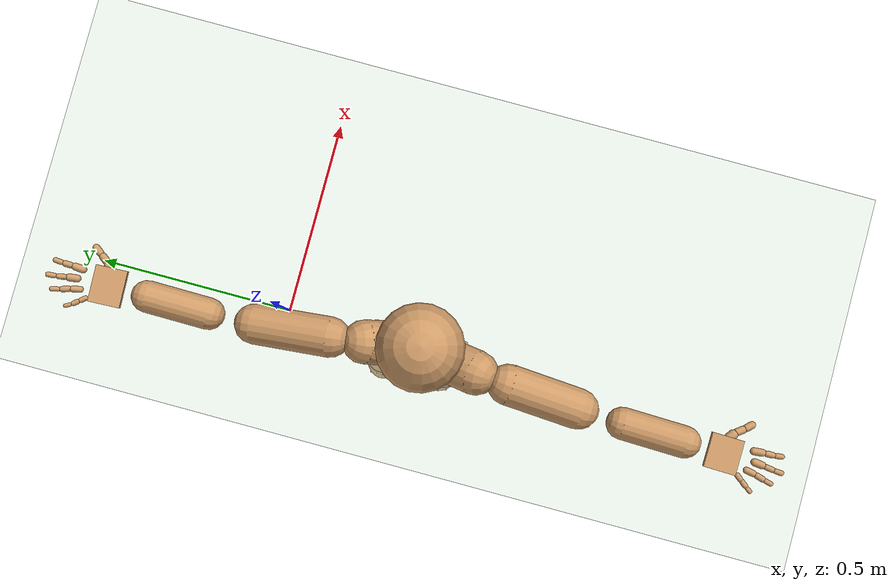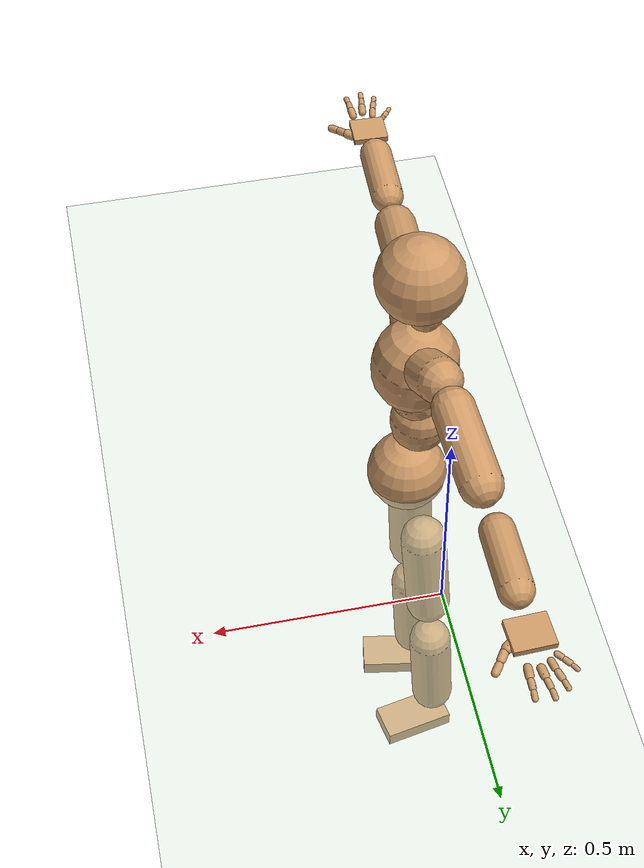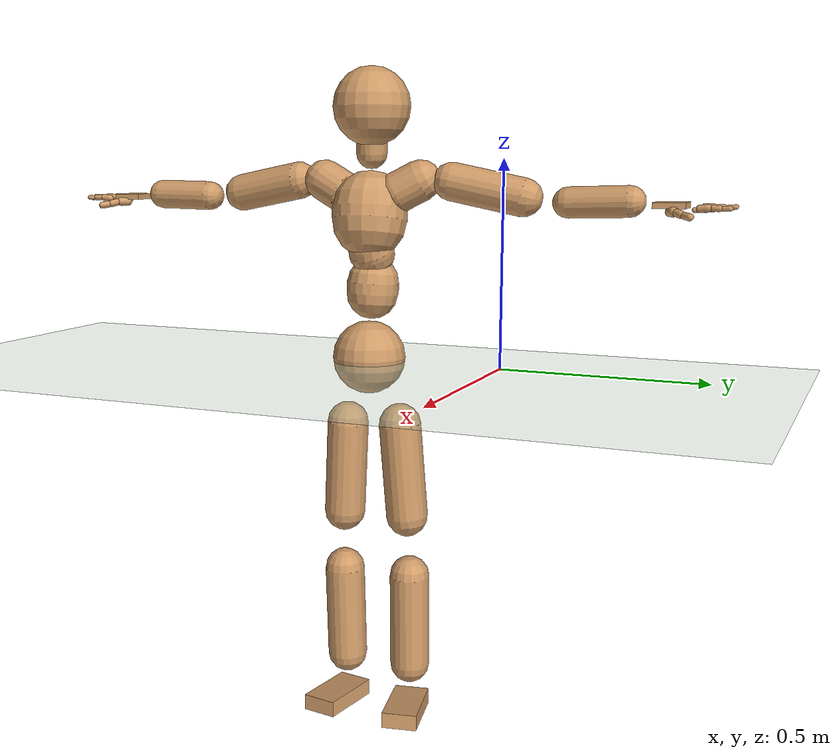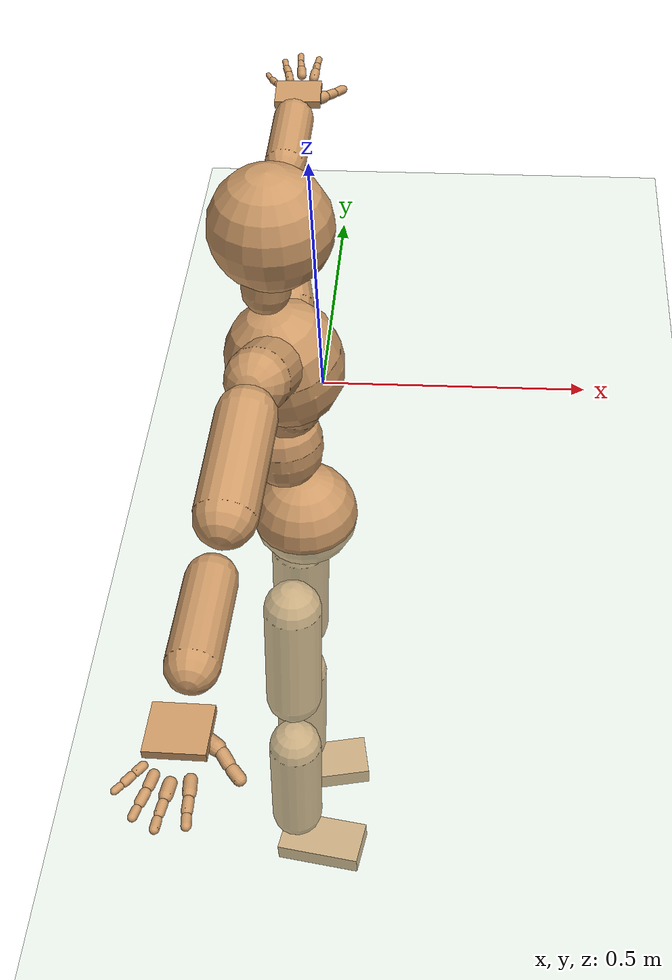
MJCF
<mujoco model="humanoid">
  <compiler coordinate="local" angle="radian"/>
  <default>
    <joint damping="0.0" armature="0.01" stiffness="0.0" limited="true"/>
    <geom conaffinity="1" condim="3" contype="7" margin="0.001" rgba="0.8 0.6 .4 1"/>
  </default>
  <asset>
    <texture type="skybox" builtin="gradient" rgb1=".4 .5 .6" rgb2="0 0 0" width="100" height="100"/>
    <texture builtin="flat" height="1278" mark="cross" markrgb="1 1 1" name="texgeom" random="0.01" rgb1="0.8 0.6 0.4" rgb2="0.8 0.6 0.4" type="cube" width="127"/>
    <texture builtin="checker" height="100" name="texplane" rgb1="0 0 0" rgb2="0.8 0.8 0.8" type="2d" width="100"/>
    <material name="MatPlane" reflectance="0.5" shininess="1" specular="1" texrepeat="60 60" texture="texplane"/>
    <material name="geom" texture="texgeom" texuniform="true"/>
  </asset>
  <worldbody>
    <light cutoff="100" diffuse="1 1 1" dir="-0 0 -1.3" directional="true" exponent="1" pos="0 0 1.3" specular=".1 .1 .1"/>
    <geom conaffinity="1" condim="3" name="floor" pos="0 0 0" rgba="0.8 0.9 0.8 1" size="100 100 .2" type="plane" material="MatPlane"/>
    <body name="Pelvis" pos="0.0003 -0.3472 0.0081">
      <freejoint name="Pelvis"/>
      <geom type="sphere" contype="1" conaffinity="1" density="500" size="0.0917" pos="0.0000 0.0000 0.0000" name="Pelvis"/>
      <body name="L_Hip" pos="-0.0222 0.0682 -0.0917">
        <joint name="L_Hip_x" type="hinge" pos="0 0 0" axis="1 0 0" stiffness="800" damping="80" armature="0.02" range="-180.0000 180.0000"/>
        <joint name="L_Hip_y" type="hinge" pos="0 0 0" axis="0 1 0" stiffness="800" damping="80" armature="0.02" range="-180.0000 180.0000"/>
        <joint name="L_Hip_z" type="hinge" pos="0 0 0" axis="0 0 1" stiffness="800" damping="80" armature="0.02" range="-180.0000 180.0000"/>
        <geom type="capsule" contype="1" conaffinity="1" density="500" fromto="-0.0051 0.0048 -0.0818 -0.0203 0.0190 -0.3273" size="0.0535" name="L_Hip"/>
        <body name="L_Knee" pos="-0.0253 0.0238 -0.4091">
          <joint name="L_Knee_x" type="hinge" pos="0 0 0" axis="1 0 0" stiffness="800" damping="80" armature="0.02" range="-180.0000 180.0000"/>
          <joint name="L_Knee_y" type="hinge" pos="0 0 0" axis="0 1 0" stiffness="800" damping="80" armature="0.02" range="-180.0000 180.0000"/>
          <joint name="L_Knee_z" type="hinge" pos="0 0 0" axis="0 0 1" stiffness="800" damping="80" armature="0.02" range="-180.0000 180.0000"/>
          <geom type="capsule" contype="1" conaffinity="1" density="500" fromto="-0.0047 -0.0012 -0.0837 -0.0187 -0.0049 -0.3350" size="0.0518" name="L_Knee"/>
          <body name="L_Ankle" pos="-0.0233 -0.0062 -0.4187">
            <joint name="L_Ankle_x" type="hinge" pos="0 0 0" axis="1 0 0" stiffness="800" damping="80" armature="0.02" range="-180.0000 180.0000"/>
            <joint name="L_Ankle_y" type="hinge" pos="0 0 0" axis="0 1 0" stiffness="800" damping="80" armature="0.02" range="-180.0000 180.0000"/>
            <joint name="L_Ankle_z" type="hinge" pos="0 0 0" axis="0 0 1" stiffness="800" damping="80" armature="0.02" range="-180.0000 180.0000"/>
            <geom type="box" contype="1" conaffinity="1" density="500" pos="0.0557 0.0107 -0.0232" size="0.0866 0.0455 0.0205" quat="0.9955 0.0000 0.0000 0.0948" name="L_Ankle"/>
            <body name="L_Toe" pos="0.1114 0.0214 -0.0465">
              <joint name="L_Toe_x" type="hinge" pos="0 0 0" axis="1 0 0" stiffness="500" damping="50" armature="0.02" range="-180.0000 180.0000"/>
              <joint name="L_Toe_y" type="hinge" pos="0 0 0" axis="0 1 0" stiffness="500" damping="50" armature="0.02" range="-180.0000 180.0000"/>
              <joint name="L_Toe_z" type="hinge" pos="0 0 0" axis="0 0 1" stiffness="500" damping="50" armature="0.02" range="-180.0000 180.0000"/>
              <geom type="box" contype="1" conaffinity="1" density="500" pos="0.0000 0.0000 0.0232" size="0.0009 0.0023 0.001" quat="0.9948 0.0000 0.0000 0.1016" name="L_Toe"/>
            </body>
          </body>
        </body>
      </body>
      <body name="R_Hip" pos="-0.0236 -0.0676 -0.0987">
        <joint name="R_Hip_x" type="hinge" pos="0 0 0" axis="1 0 0" stiffness="800" damping="80" armature="0.02" range="-180.0000 180.0000"/>
        <joint name="R_Hip_y" type="hinge" pos="0 0 0" axis="0 1 0" stiffness="800" damping="80" armature="0.02" range="-180.0000 180.0000"/>
        <joint name="R_Hip_z" type="hinge" pos="0 0 0" axis="0 0 1" stiffness="800" damping="80" armature="0.02" range="-180.0000 180.0000"/>
        <geom type="capsule" contype="1" conaffinity="1" density="500" fromto="-0.0039 -0.0054 -0.0809 -0.0157 -0.0215 -0.3236" size="0.0532" name="R_Hip"/>
        <body name="R_Knee" pos="-0.0196 -0.0269 -0.4045">
          <joint name="R_Knee_x" type="hinge" pos="0 0 0" axis="1 0 0" stiffness="800" damping="80" armature="0.02" range="-180.0000 180.0000"/>
          <joint name="R_Knee_y" type="hinge" pos="0 0 0" axis="0 1 0" stiffness="800" damping="80" armature="0.02" range="-180.0000 180.0000"/>
          <joint name="R_Knee_z" type="hinge" pos="0 0 0" axis="0 0 1" stiffness="800" damping="80" armature="0.02" range="-180.0000 180.0000"/>
          <geom type="capsule" contype="1" conaffinity="1" density="500" fromto="-0.0038 0.0003 -0.0820 -0.0153 0.0014 -0.3280" size="0.0518" name="R_Knee"/>
          <body name="R_Ankle" pos="-0.0192 0.0017 -0.41">
            <joint name="R_Ankle_x" type="hinge" pos="0 0 0" axis="1 0 0" stiffness="800" damping="80" armature="0.02" range="-180.0000 180.0000"/>
            <joint name="R_Ankle_y" type="hinge" pos="0 0 0" axis="0 1 0" stiffness="800" damping="80" armature="0.02" range="-180.0000 180.0000"/>
            <joint name="R_Ankle_z" type="hinge" pos="0 0 0" axis="0 0 1" stiffness="800" damping="80" armature="0.02" range="-180.0000 180.0000"/>
            <geom type="box" contype="1" conaffinity="1" density="500" pos="0.0525 -0.0087 -0.0251" size="0.0866 0.0455 0.0205" quat="0.9966 0.0000 0.0000 -0.0819" name="R_Ankle"/>
            <body name="R_Toe" pos="0.105 -0.0174 -0.0503">
              <joint name="R_Toe_x" type="hinge" pos="0 0 0" axis="1 0 0" stiffness="500" damping="50" armature="0.02" range="-180.0000 180.0000"/>
              <joint name="R_Toe_y" type="hinge" pos="0 0 0" axis="0 1 0" stiffness="500" damping="50" armature="0.02" range="-180.0000 180.0000"/>
              <joint name="R_Toe_z" type="hinge" pos="0 0 0" axis="0 0 1" stiffness="500" damping="50" armature="0.02" range="-180.0000 180.0000"/>
              <geom type="box" contype="1" conaffinity="1" density="500" pos="0.0000 0.0000 0.0252" size="0.0009 0.0023 0.001" quat="0.9975 0.0000 0.0000 -0.0713" name="R_Toe"/>
            </body>
          </body>
        </body>
      </body>
      <body name="Torso" pos="-0.023 -0.005 0.1059">
        <joint name="Torso_x" type="hinge" pos="0 0 0" axis="1 0 0" stiffness="1000" damping="100" armature="0.02" range="-180.0000 180.0000"/>
        <joint name="Torso_y" type="hinge" pos="0 0 0" axis="0 1 0" stiffness="1000" damping="100" armature="0.02" range="-180.0000 180.0000"/>
        <joint name="Torso_z" type="hinge" pos="0 0 0" axis="0 0 1" stiffness="1000" damping="100" armature="0.02" range="-180.0000 180.0000"/>
        <geom type="capsule" contype="1" conaffinity="1" density="500" fromto="-0.0026 0.0050 0.0800 -0.0017 0.0033 0.0534" size="0.0653" name="Torso"/>
        <body name="Spine" pos="-0.0043 0.0084 0.1334">
          <joint name="Spine_x" type="hinge" pos="0 0 0" axis="1 0 0" stiffness="1000" damping="100" armature="0.02" range="-180.0000 180.0000"/>
          <joint name="Spine_y" type="hinge" pos="0 0 0" axis="0 1 0" stiffness="1000" damping="100" armature="0.02" range="-180.0000 180.0000"/>
          <joint name="Spine_z" type="hinge" pos="0 0 0" axis="0 0 1" stiffness="1000" damping="100" armature="0.02" range="-180.0000 180.0000"/>
          <geom type="capsule" contype="1" conaffinity="1" density="500" fromto="0.0165 -0.0025 0.0287 0.0110 -0.0017 0.0192" size="0.0571" name="Spine"/>
          <body name="Chest" pos="0.0275 -0.0042 0.0479">
            <joint name="Chest_x" type="hinge" pos="0 0 0" axis="1 0 0" stiffness="1000" damping="100" armature="0.02" range="-180.0000 180.0000"/>
            <joint name="Chest_y" type="hinge" pos="0 0 0" axis="0 1 0" stiffness="1000" damping="100" armature="0.02" range="-180.0000 180.0000"/>
            <joint name="Chest_z" type="hinge" pos="0 0 0" axis="0 0 1" stiffness="1000" damping="100" armature="0.02" range="-180.0000 180.0000"/>
            <geom type="capsule" contype="1" conaffinity="1" density="500" fromto="-0.0137 -0.0016 0.0821 -0.0091 -0.0011 0.0548" size="0.0945" name="Chest"/>
            <body name="Neck" pos="-0.0337 -0.0057 0.1891">
              <joint name="Neck_x" type="hinge" pos="0 0 0" axis="1 0 0" stiffness="500" damping="50" armature="0.02" range="-180.0000 180.0000"/>
              <joint name="Neck_y" type="hinge" pos="0 0 0" axis="0 1 0" stiffness="500" damping="50" armature="0.02" range="-180.0000 180.0000"/>
              <joint name="Neck_z" type="hinge" pos="0 0 0" axis="0 0 1" stiffness="500" damping="50" armature="0.02" range="-180.0000 180.0000"/>
              <geom type="capsule" contype="1" conaffinity="1" density="500" fromto="0.0038 0.0018 0.0280 0.0153 0.0070 0.1120" size="0.0386" name="Neck"/>
              <body name="Head" pos="0.0191 0.0088 0.14">
                <joint name="Head_x" type="hinge" pos="0 0 0" axis="1 0 0" stiffness="500" damping="50" armature="0.02" range="-180.0000 180.0000"/>
                <joint name="Head_y" type="hinge" pos="0 0 0" axis="0 1 0" stiffness="500" damping="50" armature="0.02" range="-180.0000 180.0000"/>
                <joint name="Head_z" type="hinge" pos="0 0 0" axis="0 0 1" stiffness="500" damping="50" armature="0.02" range="-180.0000 180.0000"/>
                <geom type="sphere" contype="1" conaffinity="1" density="500" size="0.0961" pos="0.0000 0.0000 0.0000" name="Head"/>
              </body>
            </body>
            <body name="L_Thorax" pos="-0.0144 0.052 0.1127">
              <joint name="L_Thorax_x" type="hinge" pos="0 0 0" axis="1 0 0" stiffness="500" damping="50" armature="0.02" range="-180.0000 180.0000"/>
              <joint name="L_Thorax_y" type="hinge" pos="0 0 0" axis="0 1 0" stiffness="500" damping="50" armature="0.02" range="-180.0000 180.0000"/>
              <joint name="L_Thorax_z" type="hinge" pos="0 0 0" axis="0 0 1" stiffness="500" damping="50" armature="0.02" range="-180.0000 180.0000"/>
              <geom type="capsule" contype="1" conaffinity="1" density="500" fromto="-0.0043 0.0184 0.0098 -0.0172 0.0735 0.0391" size="0.0506" name="L_Thorax"/>
              <body name="L_Shoulder" pos="-0.0216 0.0918 0.0489">
                <joint name="L_Shoulder_x" type="hinge" pos="0 0 0" axis="1 0 0" stiffness="500" damping="50" armature="0.02" range="-180.0000 180.0000"/>
                <joint name="L_Shoulder_y" type="hinge" pos="0 0 0" axis="0 1 0" stiffness="500" damping="50" armature="0.02" range="-180.0000 180.0000"/>
                <joint name="L_Shoulder_z" type="hinge" pos="0 0 0" axis="0 0 1" stiffness="500" damping="50" armature="0.02" range="-180.0000 180.0000"/>
                <geom type="capsule" contype="1" conaffinity="1" density="500" fromto="-0.0053 0.0590 -0.0120 -0.0212 0.2360 -0.0480" size="0.0465" name="L_Shoulder"/>
                <body name="L_Elbow" pos="-0.0265 0.295 -0.0601">
                  <joint name="L_Elbow_x" type="hinge" pos="0 0 0" axis="1 0 0" stiffness="500" damping="50" armature="0.02" range="-720.0000 720.0000"/>
                  <joint name="L_Elbow_y" type="hinge" pos="0 0 0" axis="0 1 0" stiffness="500" damping="50" armature="0.02" range="-720.0000 720.0000"/>
                  <joint name="L_Elbow_z" type="hinge" pos="0 0 0" axis="0 0 1" stiffness="500" damping="50" armature="0.02" range="-720.0000 720.0000"/>
                  <geom type="capsule" contype="1" conaffinity="1" density="500" fromto="0.0005 0.0489 0.0016 0.0018 0.1955 0.0065" size="0.037" name="L_Elbow"/>
                  <body name="L_Wrist" pos="0.0023 0.2443 0.0081">
                    <joint name="L_Wrist_x" type="hinge" pos="0 0 0" axis="1 0 0" stiffness="300" damping="30" armature="0.02" range="-180.0000 180.0000"/>
                    <joint name="L_Wrist_y" type="hinge" pos="0 0 0" axis="0 1 0" stiffness="300" damping="30" armature="0.02" range="-180.0000 180.0000"/>
                    <joint name="L_Wrist_z" type="hinge" pos="0 0 0" axis="0 0 1" stiffness="300" damping="30" armature="0.02" range="-180.0000 180.0000"/>
                    <geom type="box" contype="1" conaffinity="1" density="500" pos="-0.0019 0.0456 -0.0085" size="0.0374 0.0432 0.0069" quat="0.7218 0.0000 0.0000 -0.6921" name="L_Wrist"/>
                    <body name="L_Index1" pos="0.0202 0.1067 -0.0151">
                      <joint name="L_Index1_x" type="hinge" pos="0 0 0" axis="1 0 0" stiffness="100" damping="10" armature="0.02" range="-180.0000 180.0000"/>
                      <joint name="L_Index1_y" type="hinge" pos="0 0 0" axis="0 1 0" stiffness="100" damping="10" armature="0.02" range="-180.0000 180.0000"/>
                      <joint name="L_Index1_z" type="hinge" pos="0 0 0" axis="0 0 1" stiffness="100" damping="10" armature="0.02" range="-180.0000 180.0000"/>
                      <geom type="capsule" contype="1" conaffinity="1" density="500" fromto="0.0005 0.0063 0.0006 0.0021 0.0253 0.0022" size="0.0087" name="L_Index1"/>
                      <body name="L_Index2" pos="0.0026 0.0317 0.0028">
                        <joint name="L_Index2_x" type="hinge" pos="0 0 0" axis="1 0 0" stiffness="100" damping="10" armature="0.02" range="-180.0000 180.0000"/>
                        <joint name="L_Index2_y" type="hinge" pos="0 0 0" axis="0 1 0" stiffness="100" damping="10" armature="0.02" range="-180.0000 180.0000"/>
                        <joint name="L_Index2_z" type="hinge" pos="0 0 0" axis="0 0 1" stiffness="100" damping="10" armature="0.02" range="-180.0000 180.0000"/>
                        <geom type="capsule" contype="1" conaffinity="1" density="500" fromto="0.0001 0.0045 -0.0003 0.0003 0.0180 -0.0011" size="0.0072" name="L_Index2"/>
                        <body name="L_Index3" pos="0.0004 0.0224 -0.0014">
                          <joint name="L_Index3_x" type="hinge" pos="0 0 0" axis="1 0 0" stiffness="100" damping="10" armature="0.02" range="-180.0000 180.0000"/>
                          <joint name="L_Index3_y" type="hinge" pos="0 0 0" axis="0 1 0" stiffness="100" damping="10" armature="0.02" range="-180.0000 180.0000"/>
                          <joint name="L_Index3_z" type="hinge" pos="0 0 0" axis="0 0 1" stiffness="100" damping="10" armature="0.02" range="-180.0000 180.0000"/>
                          <geom type="capsule" contype="1" conaffinity="1" density="500" fromto="0.0005 0.0049 0.0001 0.0019 0.0196 0.0005" size="0.0061" name="L_Index3"/>
                        </body>
                      </body>
                    </body>
                    <body name="L_Middle1" pos="-0.0021 0.1138 -0.0127">
                      <joint name="L_Middle1_x" type="hinge" pos="0 0 0" axis="1 0 0" stiffness="100" damping="10" armature="0.02" range="-180.0000 180.0000"/>
                      <joint name="L_Middle1_y" type="hinge" pos="0 0 0" axis="0 1 0" stiffness="100" damping="10" armature="0.02" range="-180.0000 180.0000"/>
                      <joint name="L_Middle1_z" type="hinge" pos="0 0 0" axis="0 0 1" stiffness="100" damping="10" armature="0.02" range="-180.0000 180.0000"/>
                      <geom type="capsule" contype="1" conaffinity="1" density="500" fromto="-0.0008 0.0060 0.0003 -0.0031 0.0240 0.0011" size="0.0088" name="L_Middle1"/>
                      <body name="L_Middle2" pos="-0.0039 0.03 0.0014">
                        <joint name="L_Middle2_x" type="hinge" pos="0 0 0" axis="1 0 0" stiffness="100" damping="10" armature="0.02" range="-180.0000 180.0000"/>
                        <joint name="L_Middle2_y" type="hinge" pos="0 0 0" axis="0 1 0" stiffness="100" damping="10" armature="0.02" range="-180.0000 180.0000"/>
                        <joint name="L_Middle2_z" type="hinge" pos="0 0 0" axis="0 0 1" stiffness="100" damping="10" armature="0.02" range="-180.0000 180.0000"/>
                        <geom type="capsule" contype="1" conaffinity="1" density="500" fromto="-0.0008 0.0047 -0.0001 -0.0030 0.0187 -0.0004" size="0.0066" name="L_Middle2"/>
                        <body name="L_Middle3" pos="-0.0038 0.0234 -0.0006">
                          <joint name="L_Middle3_x" type="hinge" pos="0 0 0" axis="1 0 0" stiffness="100" damping="10" armature="0.02" range="-180.0000 180.0000"/>
                          <joint name="L_Middle3_y" type="hinge" pos="0 0 0" axis="0 1 0" stiffness="100" damping="10" armature="0.02" range="-180.0000 180.0000"/>
                          <joint name="L_Middle3_z" type="hinge" pos="0 0 0" axis="0 0 1" stiffness="100" damping="10" armature="0.02" range="-180.0000 180.0000"/>
                          <geom type="capsule" contype="1" conaffinity="1" density="500" fromto="-0.0004 0.0051 0.0003 -0.0014 0.0203 0.0012" size="0.0059" name="L_Middle3"/>
                        </body>
                      </body>
                    </body>
                    <body name="L_Pinky1" pos="-0.0394 0.0883 -0.0203">
                      <joint name="L_Pinky1_x" type="hinge" pos="0 0 0" axis="1 0 0" stiffness="100" damping="10" armature="0.02" range="-180.0000 180.0000"/>
                      <joint name="L_Pinky1_y" type="hinge" pos="0 0 0" axis="0 1 0" stiffness="100" damping="10" armature="0.02" range="-180.0000 180.0000"/>
                      <joint name="L_Pinky1_z" type="hinge" pos="0 0 0" axis="0 0 1" stiffness="100" damping="10" armature="0.02" range="-180.0000 180.0000"/>
                      <geom type="capsule" contype="1" conaffinity="1" density="500" fromto="-0.0024 0.0029 -0.0001 -0.0095 0.0117 -0.0002" size="0.0063" name="L_Pinky1"/>
                      <body name="L_Pinky2" pos="-0.0118 0.0146 -0.0003">
                        <joint name="L_Pinky2_x" type="hinge" pos="0 0 0" axis="1 0 0" stiffness="100" damping="10" armature="0.02" range="-180.0000 180.0000"/>
                        <joint name="L_Pinky2_y" type="hinge" pos="0 0 0" axis="0 1 0" stiffness="100" damping="10" armature="0.02" range="-180.0000 180.0000"/>
                        <joint name="L_Pinky2_z" type="hinge" pos="0 0 0" axis="0 0 1" stiffness="100" damping="10" armature="0.02" range="-180.0000 180.0000"/>
                        <geom type="capsule" contype="1" conaffinity="1" density="500" fromto="-0.0023 0.0030 -0.0002 -0.0092 0.0119 -0.0006" size="0.0062" name="L_Pinky2"/>
                        <body name="L_Pinky3" pos="-0.0116 0.0148 -0.0008">
                          <joint name="L_Pinky3_x" type="hinge" pos="0 0 0" axis="1 0 0" stiffness="100" damping="10" armature="0.02" range="-180.0000 180.0000"/>
                          <joint name="L_Pinky3_y" type="hinge" pos="0 0 0" axis="0 1 0" stiffness="100" damping="10" armature="0.02" range="-180.0000 180.0000"/>
                          <joint name="L_Pinky3_z" type="hinge" pos="0 0 0" axis="0 0 1" stiffness="100" damping="10" armature="0.02" range="-180.0000 180.0000"/>
                          <geom type="capsule" contype="1" conaffinity="1" density="500" fromto="-0.0019 0.0034 0.0002 -0.0076 0.0135 0.0010" size="0.0048" name="L_Pinky3"/>
                        </body>
                      </body>
                    </body>
                    <body name="L_Ring1" pos="-0.0242 0.1016 -0.0154">
                      <joint name="L_Ring1_x" type="hinge" pos="0 0 0" axis="1 0 0" stiffness="100" damping="10" armature="0.02" range="-180.0000 180.0000"/>
                      <joint name="L_Ring1_y" type="hinge" pos="0 0 0" axis="0 1 0" stiffness="100" damping="10" armature="0.02" range="-180.0000 180.0000"/>
                      <joint name="L_Ring1_z" type="hinge" pos="0 0 0" axis="0 0 1" stiffness="100" damping="10" armature="0.02" range="-180.0000 180.0000"/>
                      <geom type="capsule" contype="1" conaffinity="1" density="500" fromto="-0.0011 0.0054 0.0003 -0.0044 0.0218 0.0013" size="0.0076" name="L_Ring1"/>
                      <body name="L_Ring2" pos="-0.0055 0.0272 0.0017">
                        <joint name="L_Ring2_x" type="hinge" pos="0 0 0" axis="1 0 0" stiffness="100" damping="10" armature="0.02" range="-180.0000 180.0000"/>
                        <joint name="L_Ring2_y" type="hinge" pos="0 0 0" axis="0 1 0" stiffness="100" damping="10" armature="0.02" range="-180.0000 180.0000"/>
                        <joint name="L_Ring2_z" type="hinge" pos="0 0 0" axis="0 0 1" stiffness="100" damping="10" armature="0.02" range="-180.0000 180.0000"/>
                        <geom type="capsule" contype="1" conaffinity="1" density="500" fromto="-0.0014 0.0045 -0.0002 -0.0057 0.0179 -0.0007" size="0.0071" name="L_Ring2"/>
                        <body name="L_Ring3" pos="-0.0071 0.0224 -0.0009">
                          <joint name="L_Ring3_x" type="hinge" pos="0 0 0" axis="1 0 0" stiffness="100" damping="10" armature="0.02" range="-180.0000 180.0000"/>
                          <joint name="L_Ring3_y" type="hinge" pos="0 0 0" axis="0 1 0" stiffness="100" damping="10" armature="0.02" range="-180.0000 180.0000"/>
                          <joint name="L_Ring3_z" type="hinge" pos="0 0 0" axis="0 0 1" stiffness="100" damping="10" armature="0.02" range="-180.0000 180.0000"/>
                          <geom type="capsule" contype="1" conaffinity="1" density="500" fromto="-0.0010 0.0049 0.0002 -0.0041 0.0195 0.0009" size="0.0056" name="L_Ring3"/>
                        </body>
                      </body>
                    </body>
                    <body name="L_Thumb1" pos="0.0263 0.0459 -0.0219">
                      <joint name="L_Thumb1_x" type="hinge" pos="0 0 0" axis="1 0 0" stiffness="100" damping="10" armature="0.02" range="-180.0000 180.0000"/>
                      <joint name="L_Thumb1_y" type="hinge" pos="0 0 0" axis="0 1 0" stiffness="100" damping="10" armature="0.02" range="-180.0000 180.0000"/>
                      <joint name="L_Thumb1_z" type="hinge" pos="0 0 0" axis="0 0 1" stiffness="100" damping="10" armature="0.02" range="-180.0000 180.0000"/>
                      <geom type="capsule" contype="1" conaffinity="1" density="500" fromto="0.0047 0.0035 -0.0000 0.0188 0.0141 -0.0000" size="0.0114" name="L_Thumb1"/>
                      <body name="L_Thumb2" pos="0.0235 0.0176 0">
                        <joint name="L_Thumb2_x" type="hinge" pos="0 0 0" axis="1 0 0" stiffness="100" damping="10" armature="0.02" range="-180.0000 180.0000"/>
                        <joint name="L_Thumb2_y" type="hinge" pos="0 0 0" axis="0 1 0" stiffness="100" damping="10" armature="0.02" range="-180.0000 180.0000"/>
                        <joint name="L_Thumb2_z" type="hinge" pos="0 0 0" axis="0 0 1" stiffness="100" damping="10" armature="0.02" range="-180.0000 180.0000"/>
                        <geom type="capsule" contype="1" conaffinity="1" density="500" fromto="0.0029 0.0041 -0.0012 0.0116 0.0164 -0.0047" size="0.009" name="L_Thumb2"/>
                        <body name="L_Thumb3" pos="0.0145 0.0205 -0.0059">
                          <joint name="L_Thumb3_x" type="hinge" pos="0 0 0" axis="1 0 0" stiffness="100" damping="10" armature="0.02" range="-180.0000 180.0000"/>
                          <joint name="L_Thumb3_y" type="hinge" pos="0 0 0" axis="0 1 0" stiffness="100" damping="10" armature="0.02" range="-180.0000 180.0000"/>
                          <joint name="L_Thumb3_z" type="hinge" pos="0 0 0" axis="0 0 1" stiffness="100" damping="10" armature="0.02" range="-180.0000 180.0000"/>
                          <geom type="capsule" contype="1" conaffinity="1" density="500" fromto="0.0033 0.0045 -0.0008 0.0132 0.0180 -0.0031" size="0.0085" name="L_Thumb3"/>
                        </body>
                      </body>
                    </body>
                  </body>
                </body>
              </body>
            </body>
            <body name="R_Thorax" pos="-0.0204 -0.0543 0.1089">
              <joint name="R_Thorax_x" type="hinge" pos="0 0 0" axis="1 0 0" stiffness="500" damping="50" armature="0.02" range="-180.0000 180.0000"/>
              <joint name="R_Thorax_y" type="hinge" pos="0 0 0" axis="0 1 0" stiffness="500" damping="50" armature="0.02" range="-180.0000 180.0000"/>
              <joint name="R_Thorax_z" type="hinge" pos="0 0 0" axis="0 0 1" stiffness="500" damping="50" armature="0.02" range="-180.0000 180.0000"/>
              <geom type="capsule" contype="1" conaffinity="1" density="500" fromto="-0.0031 -0.0199 0.0102 -0.0123 -0.0795 0.0407" size="0.0516" name="R_Thorax"/>
              <body name="R_Shoulder" pos="-0.0154 -0.0994 0.0509">
                <joint name="R_Shoulder_x" type="hinge" pos="0 0 0" axis="1 0 0" stiffness="500" damping="50" armature="0.02" range="-180.0000 180.0000"/>
                <joint name="R_Shoulder_y" type="hinge" pos="0 0 0" axis="0 1 0" stiffness="500" damping="50" armature="0.02" range="-180.0000 180.0000"/>
                <joint name="R_Shoulder_z" type="hinge" pos="0 0 0" axis="0 0 1" stiffness="500" damping="50" armature="0.02" range="-180.0000 180.0000"/>
                <geom type="capsule" contype="1" conaffinity="1" density="500" fromto="-0.0039 -0.0569 -0.0109 -0.0154 -0.2277 -0.0436" size="0.0469" name="R_Shoulder"/>
                <body name="R_Elbow" pos="-0.0193 -0.2846 -0.0545">
                  <joint name="R_Elbow_x" type="hinge" pos="0 0 0" axis="1 0 0" stiffness="500" damping="50" armature="0.02" range="-720.0000 720.0000"/>
                  <joint name="R_Elbow_y" type="hinge" pos="0 0 0" axis="0 1 0" stiffness="500" damping="50" armature="0.02" range="-720.0000 720.0000"/>
                  <joint name="R_Elbow_z" type="hinge" pos="0 0 0" axis="0 0 1" stiffness="500" damping="50" armature="0.02" range="-720.0000 720.0000"/>
                  <geom type="capsule" contype="1" conaffinity="1" density="500" fromto="-0.0013 -0.0491 0.0007 -0.0052 -0.1963 0.0030" size="0.0372" name="R_Elbow"/>
                  <body name="R_Wrist" pos="-0.0065 -0.2454 0.0037">
                    <joint name="R_Wrist_x" type="hinge" pos="0 0 0" axis="1 0 0" stiffness="300" damping="30" armature="0.02" range="-180.0000 180.0000"/>
                    <joint name="R_Wrist_y" type="hinge" pos="0 0 0" axis="0 1 0" stiffness="300" damping="30" armature="0.02" range="-180.0000 180.0000"/>
                    <joint name="R_Wrist_z" type="hinge" pos="0 0 0" axis="0 0 1" stiffness="300" damping="30" armature="0.02" range="-180.0000 180.0000"/>
                    <geom type="box" contype="1" conaffinity="1" density="500" pos="-0.0012 -0.0449 -0.0082" size="0.0374 0.0404 0.007" quat="0.7165 0.0000 0.0000 0.6976" name="R_Wrist"/>
                    <body name="R_Index1" pos="0.0217 -0.1053 -0.0144">
                      <joint name="R_Index1_x" type="hinge" pos="0 0 0" axis="1 0 0" stiffness="100" damping="10" armature="0.02" range="-180.0000 180.0000"/>
                      <joint name="R_Index1_y" type="hinge" pos="0 0 0" axis="0 1 0" stiffness="100" damping="10" armature="0.02" range="-180.0000 180.0000"/>
                      <joint name="R_Index1_z" type="hinge" pos="0 0 0" axis="0 0 1" stiffness="100" damping="10" armature="0.02" range="-180.0000 180.0000"/>
                      <geom type="capsule" contype="1" conaffinity="1" density="500" fromto="0.0005 -0.0063 0.0006 0.0021 -0.0253 0.0022" size="0.0087" name="R_Index1"/>
                      <body name="R_Index2" pos="0.0026 -0.0317 0.0028">
                        <joint name="R_Index2_x" type="hinge" pos="0 0 0" axis="1 0 0" stiffness="100" damping="10" armature="0.02" range="-180.0000 180.0000"/>
                        <joint name="R_Index2_y" type="hinge" pos="0 0 0" axis="0 1 0" stiffness="100" damping="10" armature="0.02" range="-180.0000 180.0000"/>
                        <joint name="R_Index2_z" type="hinge" pos="0 0 0" axis="0 0 1" stiffness="100" damping="10" armature="0.02" range="-180.0000 180.0000"/>
                        <geom type="capsule" contype="1" conaffinity="1" density="500" fromto="0.0001 -0.0045 -0.0003 0.0003 -0.0180 -0.0011" size="0.0072" name="R_Index2"/>
                        <body name="R_Index3" pos="0.0004 -0.0224 -0.0014">
                          <joint name="R_Index3_x" type="hinge" pos="0 0 0" axis="1 0 0" stiffness="100" damping="10" armature="0.02" range="-180.0000 180.0000"/>
                          <joint name="R_Index3_y" type="hinge" pos="0 0 0" axis="0 1 0" stiffness="100" damping="10" armature="0.02" range="-180.0000 180.0000"/>
                          <joint name="R_Index3_z" type="hinge" pos="0 0 0" axis="0 0 1" stiffness="100" damping="10" armature="0.02" range="-180.0000 180.0000"/>
                          <geom type="capsule" contype="1" conaffinity="1" density="500" fromto="0.0005 -0.0041 0.0001 0.0019 -0.0164 0.0005" size="0.0064" name="R_Index3"/>
                        </body>
                      </body>
                    </body>
                    <body name="R_Middle1" pos="-0.0007 -0.1124 -0.0121">
                      <joint name="R_Middle1_x" type="hinge" pos="0 0 0" axis="1 0 0" stiffness="100" damping="10" armature="0.02" range="-180.0000 180.0000"/>
                      <joint name="R_Middle1_y" type="hinge" pos="0 0 0" axis="0 1 0" stiffness="100" damping="10" armature="0.02" range="-180.0000 180.0000"/>
                      <joint name="R_Middle1_z" type="hinge" pos="0 0 0" axis="0 0 1" stiffness="100" damping="10" armature="0.02" range="-180.0000 180.0000"/>
                      <geom type="capsule" contype="1" conaffinity="1" density="500" fromto="-0.0008 -0.0060 0.0003 -0.0031 -0.0240 0.0011" size="0.0088" name="R_Middle1"/>
                      <body name="R_Middle2" pos="-0.0039 -0.03 0.0014">
                        <joint name="R_Middle2_x" type="hinge" pos="0 0 0" axis="1 0 0" stiffness="100" damping="10" armature="0.02" range="-180.0000 180.0000"/>
                        <joint name="R_Middle2_y" type="hinge" pos="0 0 0" axis="0 1 0" stiffness="100" damping="10" armature="0.02" range="-180.0000 180.0000"/>
                        <joint name="R_Middle2_z" type="hinge" pos="0 0 0" axis="0 0 1" stiffness="100" damping="10" armature="0.02" range="-180.0000 180.0000"/>
                        <geom type="capsule" contype="1" conaffinity="1" density="500" fromto="-0.0008 -0.0047 -0.0001 -0.0030 -0.0187 -0.0004" size="0.0066" name="R_Middle2"/>
                        <body name="R_Middle3" pos="-0.0038 -0.0234 -0.0006">
                          <joint name="R_Middle3_x" type="hinge" pos="0 0 0" axis="1 0 0" stiffness="100" damping="10" armature="0.02" range="-180.0000 180.0000"/>
                          <joint name="R_Middle3_y" type="hinge" pos="0 0 0" axis="0 1 0" stiffness="100" damping="10" armature="0.02" range="-180.0000 180.0000"/>
                          <joint name="R_Middle3_z" type="hinge" pos="0 0 0" axis="0 0 1" stiffness="100" damping="10" armature="0.02" range="-180.0000 180.0000"/>
                          <geom type="capsule" contype="1" conaffinity="1" density="500" fromto="-0.0004 -0.0043 0.0003 -0.0014 -0.0171 0.0012" size="0.0062" name="R_Middle3"/>
                        </body>
                      </body>
                    </body>
                    <body name="R_Pinky1" pos="-0.038 -0.0869 -0.0197">
                      <joint name="R_Pinky1_x" type="hinge" pos="0 0 0" axis="1 0 0" stiffness="100" damping="10" armature="0.02" range="-180.0000 180.0000"/>
                      <joint name="R_Pinky1_y" type="hinge" pos="0 0 0" axis="0 1 0" stiffness="100" damping="10" armature="0.02" range="-180.0000 180.0000"/>
                      <joint name="R_Pinky1_z" type="hinge" pos="0 0 0" axis="0 0 1" stiffness="100" damping="10" armature="0.02" range="-180.0000 180.0000"/>
                      <geom type="capsule" contype="1" conaffinity="1" density="500" fromto="-0.0024 -0.0029 -0.0001 -0.0095 -0.0117 -0.0002" size="0.0063" name="R_Pinky1"/>
                      <body name="R_Pinky2" pos="-0.0118 -0.0146 -0.0003">
                        <joint name="R_Pinky2_x" type="hinge" pos="0 0 0" axis="1 0 0" stiffness="100" damping="10" armature="0.02" range="-180.0000 180.0000"/>
                        <joint name="R_Pinky2_y" type="hinge" pos="0 0 0" axis="0 1 0" stiffness="100" damping="10" armature="0.02" range="-180.0000 180.0000"/>
                        <joint name="R_Pinky2_z" type="hinge" pos="0 0 0" axis="0 0 1" stiffness="100" damping="10" armature="0.02" range="-180.0000 180.0000"/>
                        <geom type="capsule" contype="1" conaffinity="1" density="500" fromto="-0.0023 -0.0030 -0.0002 -0.0092 -0.0119 -0.0006" size="0.0062" name="R_Pinky2"/>
                        <body name="R_Pinky3" pos="-0.0116 -0.0148 -0.0008">
                          <joint name="R_Pinky3_x" type="hinge" pos="0 0 0" axis="1 0 0" stiffness="100" damping="10" armature="0.02" range="-180.0000 180.0000"/>
                          <joint name="R_Pinky3_y" type="hinge" pos="0 0 0" axis="0 1 0" stiffness="100" damping="10" armature="0.02" range="-180.0000 180.0000"/>
                          <joint name="R_Pinky3_z" type="hinge" pos="0 0 0" axis="0 0 1" stiffness="100" damping="10" armature="0.02" range="-180.0000 180.0000"/>
                          <geom type="capsule" contype="1" conaffinity="1" density="500" fromto="-0.0019 -0.0026 0.0002 -0.0076 -0.0103 0.0010" size="0.0051" name="R_Pinky3"/>
                        </body>
                      </body>
                    </body>
                    <body name="R_Ring1" pos="-0.0227 -0.1002 -0.0148">
                      <joint name="R_Ring1_x" type="hinge" pos="0 0 0" axis="1 0 0" stiffness="100" damping="10" armature="0.02" range="-180.0000 180.0000"/>
                      <joint name="R_Ring1_y" type="hinge" pos="0 0 0" axis="0 1 0" stiffness="100" damping="10" armature="0.02" range="-180.0000 180.0000"/>
                      <joint name="R_Ring1_z" type="hinge" pos="0 0 0" axis="0 0 1" stiffness="100" damping="10" armature="0.02" range="-180.0000 180.0000"/>
                      <geom type="capsule" contype="1" conaffinity="1" density="500" fromto="-0.0011 -0.0054 0.0003 -0.0044 -0.0218 0.0013" size="0.0076" name="R_Ring1"/>
                      <body name="R_Ring2" pos="-0.0055 -0.0272 0.0017">
                        <joint name="R_Ring2_x" type="hinge" pos="0 0 0" axis="1 0 0" stiffness="100" damping="10" armature="0.02" range="-180.0000 180.0000"/>
                        <joint name="R_Ring2_y" type="hinge" pos="0 0 0" axis="0 1 0" stiffness="100" damping="10" armature="0.02" range="-180.0000 180.0000"/>
                        <joint name="R_Ring2_z" type="hinge" pos="0 0 0" axis="0 0 1" stiffness="100" damping="10" armature="0.02" range="-180.0000 180.0000"/>
                        <geom type="capsule" contype="1" conaffinity="1" density="500" fromto="-0.0014 -0.0045 -0.0002 -0.0057 -0.0179 -0.0007" size="0.0071" name="R_Ring2"/>
                        <body name="R_Ring3" pos="-0.0071 -0.0224 -0.0009">
                          <joint name="R_Ring3_x" type="hinge" pos="0 0 0" axis="1 0 0" stiffness="100" damping="10" armature="0.02" range="-180.0000 180.0000"/>
                          <joint name="R_Ring3_y" type="hinge" pos="0 0 0" axis="0 1 0" stiffness="100" damping="10" armature="0.02" range="-180.0000 180.0000"/>
                          <joint name="R_Ring3_z" type="hinge" pos="0 0 0" axis="0 0 1" stiffness="100" damping="10" armature="0.02" range="-180.0000 180.0000"/>
                          <geom type="capsule" contype="1" conaffinity="1" density="500" fromto="-0.0010 -0.0041 0.0002 -0.0041 -0.0163 0.0009" size="0.0059" name="R_Ring3"/>
                        </body>
                      </body>
                    </body>
                    <body name="R_Thumb1" pos="0.0277 -0.0446 -0.0213">
                      <joint name="R_Thumb1_x" type="hinge" pos="0 0 0" axis="1 0 0" stiffness="100" damping="10" armature="0.02" range="-180.0000 180.0000"/>
                      <joint name="R_Thumb1_y" type="hinge" pos="0 0 0" axis="0 1 0" stiffness="100" damping="10" armature="0.02" range="-180.0000 180.0000"/>
                      <joint name="R_Thumb1_z" type="hinge" pos="0 0 0" axis="0 0 1" stiffness="100" damping="10" armature="0.02" range="-180.0000 180.0000"/>
                      <geom type="capsule" contype="1" conaffinity="1" density="500" fromto="0.0047 -0.0035 -0.0000 0.0188 -0.0141 -0.0000" size="0.0114" name="R_Thumb1"/>
                      <body name="R_Thumb2" pos="0.0235 -0.0176 0">
                        <joint name="R_Thumb2_x" type="hinge" pos="0 0 0" axis="1 0 0" stiffness="100" damping="10" armature="0.02" range="-180.0000 180.0000"/>
                        <joint name="R_Thumb2_y" type="hinge" pos="0 0 0" axis="0 1 0" stiffness="100" damping="10" armature="0.02" range="-180.0000 180.0000"/>
                        <joint name="R_Thumb2_z" type="hinge" pos="0 0 0" axis="0 0 1" stiffness="100" damping="10" armature="0.02" range="-180.0000 180.0000"/>
                        <geom type="capsule" contype="1" conaffinity="1" density="500" fromto="0.0029 -0.0041 -0.0012 0.0116 -0.0164 -0.0047" size="0.009" name="R_Thumb2"/>
                        <body name="R_Thumb3" pos="0.0145 -0.0205 -0.0059">
                          <joint name="R_Thumb3_x" type="hinge" pos="0 0 0" axis="1 0 0" stiffness="100" damping="10" armature="0.02" range="-180.0000 180.0000"/>
                          <joint name="R_Thumb3_y" type="hinge" pos="0 0 0" axis="0 1 0" stiffness="100" damping="10" armature="0.02" range="-180.0000 180.0000"/>
                          <joint name="R_Thumb3_z" type="hinge" pos="0 0 0" axis="0 0 1" stiffness="100" damping="10" armature="0.02" range="-180.0000 180.0000"/>
                          <geom type="capsule" contype="1" conaffinity="1" density="500" fromto="0.0033 -0.0037 -0.0008 0.0132 -0.0148 -0.0031" size="0.0088" name="R_Thumb3"/>
                        </body>
                      </body>
                    </body>
                  </body>
                </body>
              </body>
            </body>
          </body>
        </body>
      </body>
    </body>
  </worldbody>
  <actuator>
    <motor name="L_Hip_x" joint="L_Hip_x" gear="500"/>
    <motor name="L_Hip_y" joint="L_Hip_y" gear="500"/>
    <motor name="L_Hip_z" joint="L_Hip_z" gear="500"/>
    <motor name="L_Knee_x" joint="L_Knee_x" gear="500"/>
    <motor name="L_Knee_y" joint="L_Knee_y" gear="500"/>
    <motor name="L_Knee_z" joint="L_Knee_z" gear="500"/>
    <motor name="L_Ankle_x" joint="L_Ankle_x" gear="500"/>
    <motor name="L_Ankle_y" joint="L_Ankle_y" gear="500"/>
    <motor name="L_Ankle_z" joint="L_Ankle_z" gear="500"/>
    <motor name="L_Toe_x" joint="L_Toe_x" gear="500"/>
    <motor name="L_Toe_y" joint="L_Toe_y" gear="500"/>
    <motor name="L_Toe_z" joint="L_Toe_z" gear="500"/>
    <motor name="R_Hip_x" joint="R_Hip_x" gear="500"/>
    <motor name="R_Hip_y" joint="R_Hip_y" gear="500"/>
    <motor name="R_Hip_z" joint="R_Hip_z" gear="500"/>
    <motor name="R_Knee_x" joint="R_Knee_x" gear="500"/>
    <motor name="R_Knee_y" joint="R_Knee_y" gear="500"/>
    <motor name="R_Knee_z" joint="R_Knee_z" gear="500"/>
    <motor name="R_Ankle_x" joint="R_Ankle_x" gear="500"/>
    <motor name="R_Ankle_y" joint="R_Ankle_y" gear="500"/>
    <motor name="R_Ankle_z" joint="R_Ankle_z" gear="500"/>
    <motor name="R_Toe_x" joint="R_Toe_x" gear="500"/>
    <motor name="R_Toe_y" joint="R_Toe_y" gear="500"/>
    <motor name="R_Toe_z" joint="R_Toe_z" gear="500"/>
    <motor name="Torso_x" joint="Torso_x" gear="500"/>
    <motor name="Torso_y" joint="Torso_y" gear="500"/>
    <motor name="Torso_z" joint="Torso_z" gear="500"/>
    <motor name="Spine_x" joint="Spine_x" gear="500"/>
    <motor name="Spine_y" joint="Spine_y" gear="500"/>
    <motor name="Spine_z" joint="Spine_z" gear="500"/>
    <motor name="Chest_x" joint="Chest_x" gear="500"/>
    <motor name="Chest_y" joint="Chest_y" gear="500"/>
    <motor name="Chest_z" joint="Chest_z" gear="500"/>
    <motor name="Neck_x" joint="Neck_x" gear="500"/>
    <motor name="Neck_y" joint="Neck_y" gear="500"/>
    <motor name="Neck_z" joint="Neck_z" gear="500"/>
    <motor name="Head_x" joint="Head_x" gear="500"/>
    <motor name="Head_y" joint="Head_y" gear="500"/>
    <motor name="Head_z" joint="Head_z" gear="500"/>
    <motor name="L_Thorax_x" joint="L_Thorax_x" gear="500"/>
    <motor name="L_Thorax_y" joint="L_Thorax_y" gear="500"/>
    <motor name="L_Thorax_z" joint="L_Thorax_z" gear="500"/>
    <motor name="L_Shoulder_x" joint="L_Shoulder_x" gear="500"/>
    <motor name="L_Shoulder_y" joint="L_Shoulder_y" gear="500"/>
    <motor name="L_Shoulder_z" joint="L_Shoulder_z" gear="500"/>
    <motor name="L_Elbow_x" joint="L_Elbow_x" gear="500"/>
    <motor name="L_Elbow_y" joint="L_Elbow_y" gear="500"/>
    <motor name="L_Elbow_z" joint="L_Elbow_z" gear="500"/>
    <motor name="L_Wrist_x" joint="L_Wrist_x" gear="500"/>
    <motor name="L_Wrist_y" joint="L_Wrist_y" gear="500"/>
    <motor name="L_Wrist_z" joint="L_Wrist_z" gear="500"/>
    <motor name="L_Index1_x" joint="L_Index1_x" gear="500"/>
    <motor name="L_Index1_y" joint="L_Index1_y" gear="500"/>
    <motor name="L_Index1_z" joint="L_Index1_z" gear="500"/>
    <motor name="L_Index2_x" joint="L_Index2_x" gear="500"/>
    <motor name="L_Index2_y" joint="L_Index2_y" gear="500"/>
    <motor name="L_Index2_z" joint="L_Index2_z" gear="500"/>
    <motor name="L_Index3_x" joint="L_Index3_x" gear="500"/>
    <motor name="L_Index3_y" joint="L_Index3_y" gear="500"/>
    <motor name="L_Index3_z" joint="L_Index3_z" gear="500"/>
    <motor name="L_Middle1_x" joint="L_Middle1_x" gear="500"/>
    <motor name="L_Middle1_y" joint="L_Middle1_y" gear="500"/>
    <motor name="L_Middle1_z" joint="L_Middle1_z" gear="500"/>
    <motor name="L_Middle2_x" joint="L_Middle2_x" gear="500"/>
    <motor name="L_Middle2_y" joint="L_Middle2_y" gear="500"/>
    <motor name="L_Middle2_z" joint="L_Middle2_z" gear="500"/>
    <motor name="L_Middle3_x" joint="L_Middle3_x" gear="500"/>
    <motor name="L_Middle3_y" joint="L_Middle3_y" gear="500"/>
    <motor name="L_Middle3_z" joint="L_Middle3_z" gear="500"/>
    <motor name="L_Pinky1_x" joint="L_Pinky1_x" gear="500"/>
    <motor name="L_Pinky1_y" joint="L_Pinky1_y" gear="500"/>
    <motor name="L_Pinky1_z" joint="L_Pinky1_z" gear="500"/>
    <motor name="L_Pinky2_x" joint="L_Pinky2_x" gear="500"/>
    <motor name="L_Pinky2_y" joint="L_Pinky2_y" gear="500"/>
    <motor name="L_Pinky2_z" joint="L_Pinky2_z" gear="500"/>
    <motor name="L_Pinky3_x" joint="L_Pinky3_x" gear="500"/>
    <motor name="L_Pinky3_y" joint="L_Pinky3_y" gear="500"/>
    <motor name="L_Pinky3_z" joint="L_Pinky3_z" gear="500"/>
    <motor name="L_Ring1_x" joint="L_Ring1_x" gear="500"/>
    <motor name="L_Ring1_y" joint="L_Ring1_y" gear="500"/>
    <motor name="L_Ring1_z" joint="L_Ring1_z" gear="500"/>
    <motor name="L_Ring2_x" joint="L_Ring2_x" gear="500"/>
    <motor name="L_Ring2_y" joint="L_Ring2_y" gear="500"/>
    <motor name="L_Ring2_z" joint="L_Ring2_z" gear="500"/>
    <motor name="L_Ring3_x" joint="L_Ring3_x" gear="500"/>
    <motor name="L_Ring3_y" joint="L_Ring3_y" gear="500"/>
    <motor name="L_Ring3_z" joint="L_Ring3_z" gear="500"/>
    <motor name="L_Thumb1_x" joint="L_Thumb1_x" gear="500"/>
    <motor name="L_Thumb1_y" joint="L_Thumb1_y" gear="500"/>
    <motor name="L_Thumb1_z" joint="L_Thumb1_z" gear="500"/>
    <motor name="L_Thumb2_x" joint="L_Thumb2_x" gear="500"/>
    <motor name="L_Thumb2_y" joint="L_Thumb2_y" gear="500"/>
    <motor name="L_Thumb2_z" joint="L_Thumb2_z" gear="500"/>
    <motor name="L_Thumb3_x" joint="L_Thumb3_x" gear="500"/>
    <motor name="L_Thumb3_y" joint="L_Thumb3_y" gear="500"/>
    <motor name="L_Thumb3_z" joint="L_Thumb3_z" gear="500"/>
    <motor name="R_Thorax_x" joint="R_Thorax_x" gear="500"/>
    <motor name="R_Thorax_y" joint="R_Thorax_y" gear="500"/>
    <motor name="R_Thorax_z" joint="R_Thorax_z" gear="500"/>
    <motor name="R_Shoulder_x" joint="R_Shoulder_x" gear="500"/>
    <motor name="R_Shoulder_y" joint="R_Shoulder_y" gear="500"/>
    <motor name="R_Shoulder_z" joint="R_Shoulder_z" gear="500"/>
    <motor name="R_Elbow_x" joint="R_Elbow_x" gear="500"/>
    <motor name="R_Elbow_y" joint="R_Elbow_y" gear="500"/>
    <motor name="R_Elbow_z" joint="R_Elbow_z" gear="500"/>
    <motor name="R_Wrist_x" joint="R_Wrist_x" gear="500"/>
    <motor name="R_Wrist_y" joint="R_Wrist_y" gear="500"/>
    <motor name="R_Wrist_z" joint="R_Wrist_z" gear="500"/>
    <motor name="R_Index1_x" joint="R_Index1_x" gear="500"/>
    <motor name="R_Index1_y" joint="R_Index1_y" gear="500"/>
    <motor name="R_Index1_z" joint="R_Index1_z" gear="500"/>
    <motor name="R_Index2_x" joint="R_Index2_x" gear="500"/>
    <motor name="R_Index2_y" joint="R_Index2_y" gear="500"/>
    <motor name="R_Index2_z" joint="R_Index2_z" gear="500"/>
    <motor name="R_Index3_x" joint="R_Index3_x" gear="500"/>
    <motor name="R_Index3_y" joint="R_Index3_y" gear="500"/>
    <motor name="R_Index3_z" joint="R_Index3_z" gear="500"/>
    <motor name="R_Middle1_x" joint="R_Middle1_x" gear="500"/>
    <motor name="R_Middle1_y" joint="R_Middle1_y" gear="500"/>
    <motor name="R_Middle1_z" joint="R_Middle1_z" gear="500"/>
    <motor name="R_Middle2_x" joint="R_Middle2_x" gear="500"/>
    <motor name="R_Middle2_y" joint="R_Middle2_y" gear="500"/>
    <motor name="R_Middle2_z" joint="R_Middle2_z" gear="500"/>
    <motor name="R_Middle3_x" joint="R_Middle3_x" gear="500"/>
    <motor name="R_Middle3_y" joint="R_Middle3_y" gear="500"/>
    <motor name="R_Middle3_z" joint="R_Middle3_z" gear="500"/>
    <motor name="R_Pinky1_x" joint="R_Pinky1_x" gear="500"/>
    <motor name="R_Pinky1_y" joint="R_Pinky1_y" gear="500"/>
    <motor name="R_Pinky1_z" joint="R_Pinky1_z" gear="500"/>
    <motor name="R_Pinky2_x" joint="R_Pinky2_x" gear="500"/>
    <motor name="R_Pinky2_y" joint="R_Pinky2_y" gear="500"/>
    <motor name="R_Pinky2_z" joint="R_Pinky2_z" gear="500"/>
    <motor name="R_Pinky3_x" joint="R_Pinky3_x" gear="500"/>
    <motor name="R_Pinky3_y" joint="R_Pinky3_y" gear="500"/>
    <motor name="R_Pinky3_z" joint="R_Pinky3_z" gear="500"/>
    <motor name="R_Ring1_x" joint="R_Ring1_x" gear="500"/>
    <motor name="R_Ring1_y" joint="R_Ring1_y" gear="500"/>
    <motor name="R_Ring1_z" joint="R_Ring1_z" gear="500"/>
    <motor name="R_Ring2_x" joint="R_Ring2_x" gear="500"/>
    <motor name="R_Ring2_y" joint="R_Ring2_y" gear="500"/>
    <motor name="R_Ring2_z" joint="R_Ring2_z" gear="500"/>
    <motor name="R_Ring3_x" joint="R_Ring3_x" gear="500"/>
    <motor name="R_Ring3_y" joint="R_Ring3_y" gear="500"/>
    <motor name="R_Ring3_z" joint="R_Ring3_z" gear="500"/>
    <motor name="R_Thumb1_x" joint="R_Thumb1_x" gear="500"/>
    <motor name="R_Thumb1_y" joint="R_Thumb1_y" gear="500"/>
    <motor name="R_Thumb1_z" joint="R_Thumb1_z" gear="500"/>
    <motor name="R_Thumb2_x" joint="R_Thumb2_x" gear="500"/>
    <motor name="R_Thumb2_y" joint="R_Thumb2_y" gear="500"/>
    <motor name="R_Thumb2_z" joint="R_Thumb2_z" gear="500"/>
    <motor name="R_Thumb3_x" joint="R_Thumb3_x" gear="500"/>
    <motor name="R_Thumb3_y" joint="R_Thumb3_y" gear="500"/>
    <motor name="R_Thumb3_z" joint="R_Thumb3_z" gear="500"/>
  </actuator>
  <contact>
    <exclude body1="Torso" body2="Chest"/>
    <exclude body1="Head" body2="Chest"/>
    <exclude body1="R_Knee" body2="R_Toe"/>
    <exclude body1="R_Knee" body2="L_Ankle"/>
    <exclude body1="R_Knee" body2="L_Toe"/>
    <exclude body1="L_Knee" body2="L_Toe"/>
    <exclude body1="L_Knee" body2="R_Ankle"/>
    <exclude body1="L_Knee" body2="R_Toe"/>
    <exclude body1="L_Shoulder" body2="Chest"/>
    <exclude body1="R_Shoulder" body2="Chest"/>
  </contact>
  <sensor/>
  <size njmax="700" nconmax="700"/>
</mujoco>
